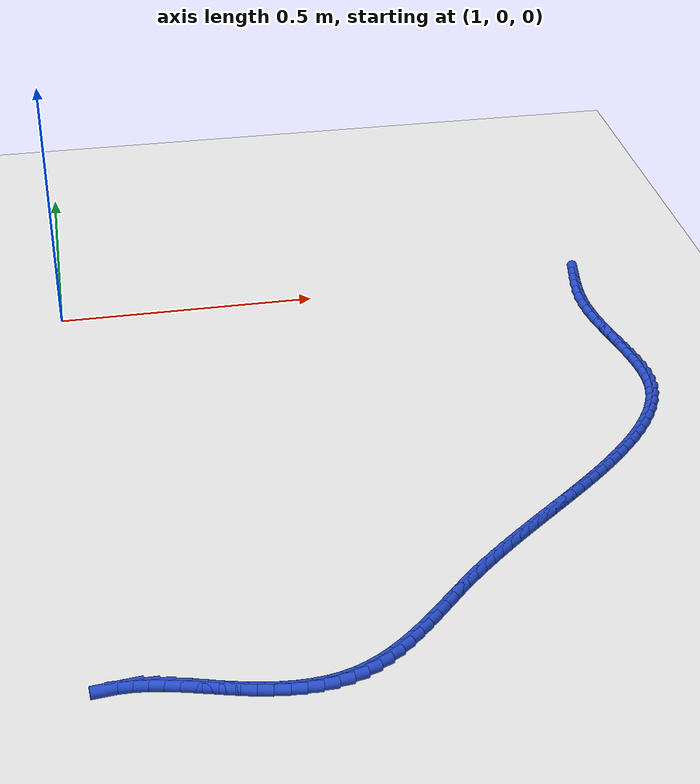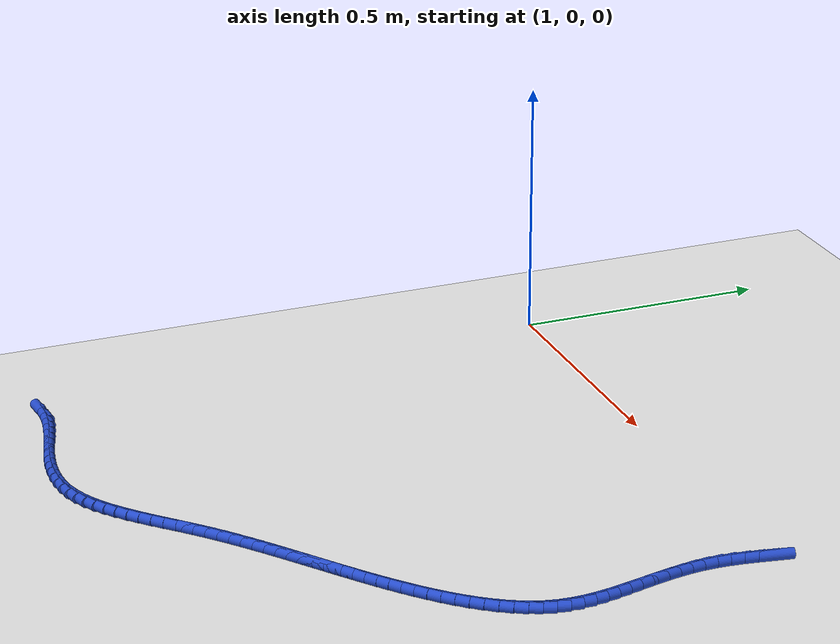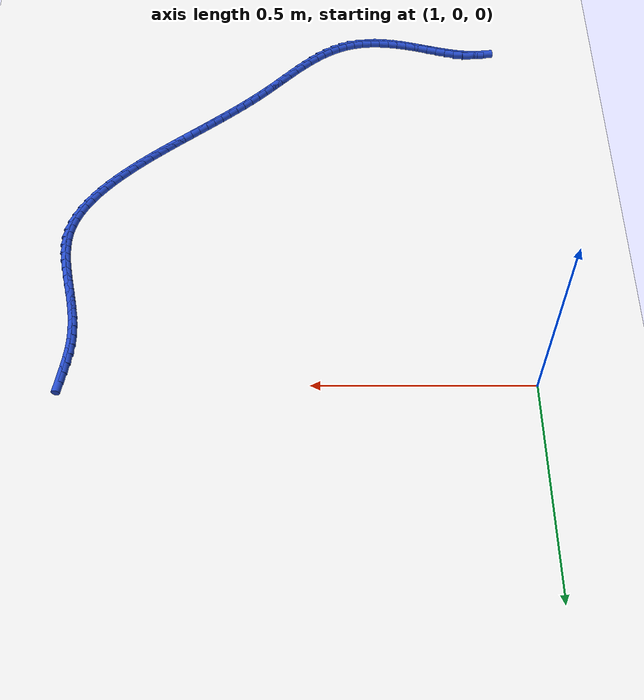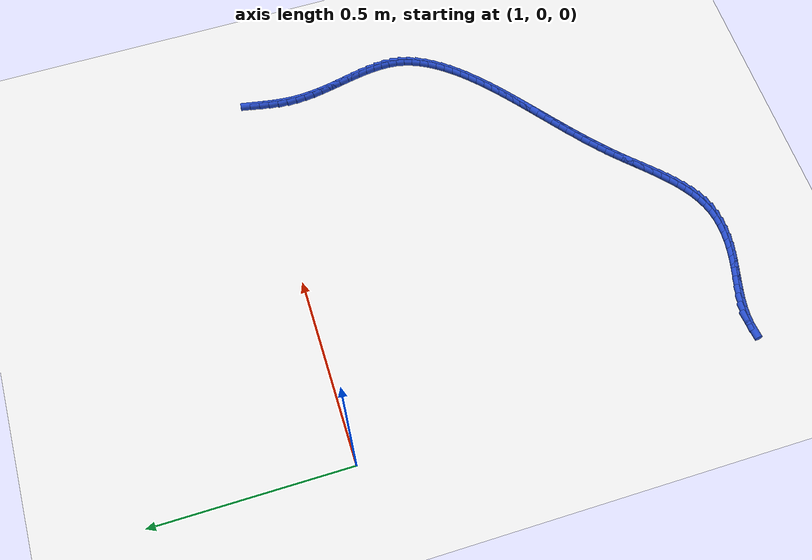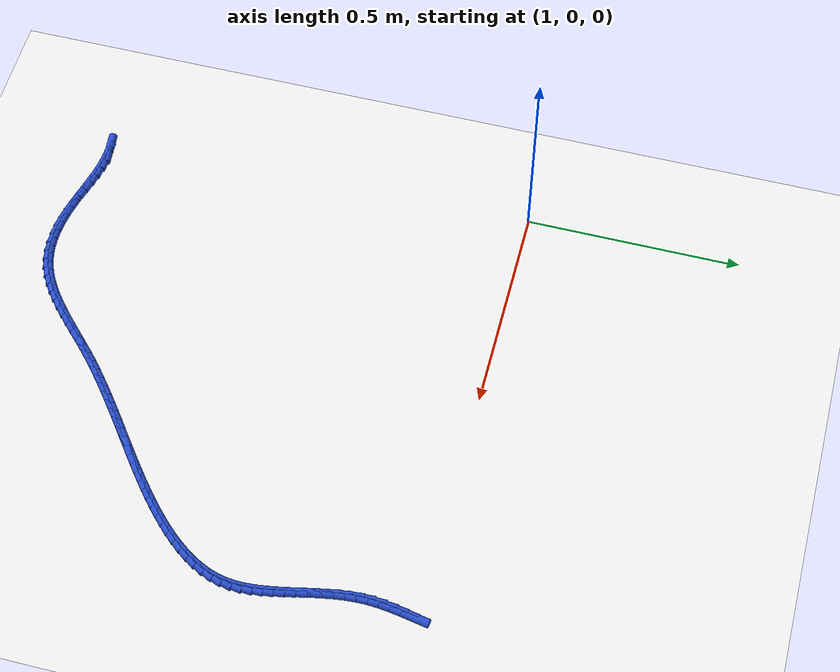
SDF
<sdf version="1.6">
 <world name="default">
  <model name="ground_plane">
   <static>1</static>
   <link name="link">
    <collision name="collision">
     <geometry><plane><normal>0 0 1</normal><size>100 100</size></plane></geometry>
     <surface><friction><ode><mu>100</mu><mu2>50</mu2></ode></friction></surface>
    </collision>
    <visual name="visual">
     <cast_shadows>0</cast_shadows>
     <geometry><plane><normal>0 0 1</normal><size>100 100</size></plane></geometry>
     <material>
      <script><uri>file://media/materials/scripts/gazebo.material</uri><name>Gazebo/WhiteGlow</name></script>
     </material>
    </visual>
   </link>
  </model>
  <model name="line">
   <link name="link_146">
    <pose>2.0486822783013046 -0.014495951095457496 0.01 0 1.57 1.3895806465222176</pose>
    <collision name="collision">
     <geometry><cylinder><radius>0.01</radius><length>0.08</length></cylinder></geometry>
    </collision>
    <visual name="visual">
     <material>
      <script><name>Gazebo/Blue</name><uri>file://media/materials/scripts/gazebo.material</uri></script>
     </material>
     <geometry><cylinder><radius>0.01</radius><length>0.08</length></cylinder></geometry>
    </visual>
   </link>
   <link name="link_147">
    <pose>2.044221834526988 -0.038839930890710674 0.01 0 1.57 1.4140635919488893</pose>
    <collision name="collision">
     <geometry><cylinder><radius>0.01</radius><length>0.08</length></cylinder></geometry>
    </collision>
    <visual name="visual">
     <material>
      <script><name>Gazebo/Blue</name><uri>file://media/materials/scripts/gazebo.material</uri></script>
     </material>
     <geometry><cylinder><radius>0.01</radius><length>0.08</length></cylinder></geometry>
    </visual>
   </link>
   <link name="link_148">
    <pose>2.040360264936487 -0.06327578136675999 0.01 0 1.57 1.4531972509927384</pose>
    <collision name="collision">
     <geometry><cylinder><radius>0.01</radius><length>0.08</length></cylinder></geometry>
    </collision>
    <visual name="visual">
     <material>
      <script><name>Gazebo/Blue</name><uri>file://media/materials/scripts/gazebo.material</uri></script>
     </material>
     <geometry><cylinder><radius>0.01</radius><length>0.08</length></cylinder></geometry>
    </visual>
   </link>
   <link name="link_149">
    <pose>2.037468843536108 -0.08774944379784438 0.01 0 1.57 1.5075055421166033</pose>
    <collision name="collision">
     <geometry><cylinder><radius>0.01</radius><length>0.08</length></cylinder></geometry>
    </collision>
    <visual name="visual">
     <material>
      <script><name>Gazebo/Blue</name><uri>file://media/materials/scripts/gazebo.material</uri></script>
     </material>
     <geometry><cylinder><radius>0.01</radius><length>0.08</length></cylinder></geometry>
    </visual>
   </link>
   <link name="link_150">
    <pose>2.035918844332154 -0.11220685945820275 0.01 0 1.57 -1.5655224282411928</pose>
    <collision name="collision">
     <geometry><cylinder><radius>0.01</radius><length>0.08</length></cylinder></geometry>
    </collision>
    <visual name="visual">
     <material>
      <script><name>Gazebo/Blue</name><uri>file://media/materials/scripts/gazebo.material</uri></script>
     </material>
     <geometry><cylinder><radius>0.01</radius><length>0.08</length></cylinder></geometry>
    </visual>
   </link>
   <link name="link_151">
    <pose>2.0360474692558097 -0.13659559765990367 0.01 0 1.57 -1.4990983044053994</pose>
    <collision name="collision">
     <geometry><cylinder><radius>0.01</radius><length>0.08</length></cylinder></geometry>
    </collision>
    <visual name="visual">
     <material>
      <script><name>Gazebo/Blue</name><uri>file://media/materials/scripts/gazebo.material</uri></script>
     </material>
     <geometry><cylinder><radius>0.01</radius><length>0.08</length></cylinder></geometry>
    </visual>
   </link>
   <link name="link_152">
    <pose>2.037791771152551 -0.16088234770834567 0.01 0 1.57 -1.445771318352139</pose>
    <collision name="collision">
     <geometry><cylinder><radius>0.01</radius><length>0.08</length></cylinder></geometry>
    </collision>
    <visual name="visual">
     <material>
      <script><name>Gazebo/Blue</name><uri>file://media/materials/scripts/gazebo.material</uri></script>
     </material>
     <geometry><cylinder><radius>0.01</radius><length>0.08</length></cylinder></geometry>
    </visual>
   </link>
   <link name="link_153">
    <pose>2.040828700569879 -0.18504622716224906 0.01 0 1.57 -1.4057005206681148</pose>
    <collision name="collision">
     <geometry><cylinder><radius>0.01</radius><length>0.08</length></cylinder></geometry>
    </collision>
    <visual name="visual">
     <material>
      <script><name>Gazebo/Blue</name><uri>file://media/materials/scripts/gazebo.material</uri></script>
     </material>
     <geometry><cylinder><radius>0.01</radius><length>0.08</length></cylinder></geometry>
    </visual>
   </link>
   <link name="link_154">
    <pose>2.0448307849451104 -0.2090665649261528 0.01 0 1.57 -1.378704857364647</pose>
    <collision name="collision">
     <geometry><cylinder><radius>0.01</radius><length>0.08</length></cylinder></geometry>
    </collision>
    <visual name="visual">
     <material>
      <script><name>Gazebo/Blue</name><uri>file://media/materials/scripts/gazebo.material</uri></script>
     </material>
     <geometry><cylinder><radius>0.01</radius><length>0.08</length></cylinder></geometry>
    </visual>
   </link>
   <link name="link_155">
    <pose>2.049470551715566 -0.23292268990459675 0.01 0 1.57 -1.364653319029093</pose>
    <collision name="collision">
     <geometry><cylinder><radius>0.01</radius><length>0.08</length></cylinder></geometry>
    </collision>
    <visual name="visual">
     <material>
      <script><name>Gazebo/Blue</name><uri>file://media/materials/scripts/gazebo.material</uri></script>
     </material>
     <geometry><cylinder><radius>0.01</radius><length>0.08</length></cylinder></geometry>
    </visual>
   </link>
   <link name="link_156">
    <pose>2.0544205283185657 -0.25659393100212075 0.01 0 1.57 -1.3636033376807182</pose>
    <collision name="collision">
     <geometry><cylinder><radius>0.01</radius><length>0.08</length></cylinder></geometry>
    </collision>
    <visual name="visual">
     <material>
      <script><name>Gazebo/Blue</name><uri>file://media/materials/scripts/gazebo.material</uri></script>
     </material>
     <geometry><cylinder><radius>0.01</radius><length>0.08</length></cylinder></geometry>
    </visual>
   </link>
   <link name="link_157">
    <pose>2.0593532421914276 -0.28005961712326466 0.01 0 1.57 -1.375880924607924</pose>
    <collision name="collision">
     <geometry><cylinder><radius>0.01</radius><length>0.08</length></cylinder></geometry>
    </collision>
    <visual name="visual">
     <material>
      <script><name>Gazebo/Blue</name><uri>file://media/materials/scripts/gazebo.material</uri></script>
     </material>
     <geometry><cylinder><radius>0.01</radius><length>0.08</length></cylinder></geometry>
    </visual>
   </link>
   <link name="link_158">
    <pose>2.0639412207714725 -0.30329907717256827 0.01 0 1.57 -1.4021088088446456</pose>
    <collision name="collision">
     <geometry><cylinder><radius>0.01</radius><length>0.08</length></cylinder></geometry>
    </collision>
    <visual name="visual">
     <material>
      <script><name>Gazebo/Blue</name><uri>file://media/materials/scripts/gazebo.material</uri></script>
     </material>
     <geometry><cylinder><radius>0.01</radius><length>0.08</length></cylinder></geometry>
    </visual>
   </link>
   <link name="link_159">
    <pose>2.067856991496019 -0.3262916400545715 0.01 0 1.57 -1.4431729335849564</pose>
    <collision name="collision">
     <geometry><cylinder><radius>0.01</radius><length>0.08</length></cylinder></geometry>
    </collision>
    <visual name="visual">
     <material>
      <script><name>Gazebo/Blue</name><uri>file://media/materials/scripts/gazebo.material</uri></script>
     </material>
     <geometry><cylinder><radius>0.01</radius><length>0.08</length></cylinder></geometry>
    </visual>
   </link>
   <link name="link_160">
    <pose>2.070773081802386 -0.34901663467381416 0.01 0 1.57 -1.5000958640659459</pose>
    <collision name="collision">
     <geometry><cylinder><radius>0.01</radius><length>0.08</length></cylinder></geometry>
    </collision>
    <visual name="visual">
     <material>
      <script><name>Gazebo/Blue</name><uri>file://media/materials/scripts/gazebo.material</uri></script>
     </material>
     <geometry><cylinder><radius>0.01</radius><length>0.08</length></cylinder></geometry>
    </visual>
   </link>
   <link name="link_161">
    <pose>2.0723620191278953 -0.3714533899348362 0.01 0 1.57 1.5678277582041924</pose>
    <collision name="collision">
     <geometry><cylinder><radius>0.01</radius><length>0.08</length></cylinder></geometry>
    </collision>
    <visual name="visual">
     <material>
      <script><name>Gazebo/Blue</name><uri>file://media/materials/scripts/gazebo.material</uri></script>
     </material>
     <geometry><cylinder><radius>0.01</radius><length>0.08</length></cylinder></geometry>
    </visual>
   </link>
   <link name="link_162">
    <pose>2.072296330909863 -0.3935812347421771 0.01 0 1.57 1.4771285907795741</pose>
    <collision name="collision">
     <geometry><cylinder><radius>0.01</radius><length>0.08</length></cylinder></geometry>
    </collision>
    <visual name="visual">
     <material>
      <script><name>Gazebo/Blue</name><uri>file://media/materials/scripts/gazebo.material</uri></script>
     </material>
     <geometry><cylinder><radius>0.01</radius><length>0.08</length></cylinder></geometry>
    </visual>
   </link>
   <link name="link_163">
    <pose>2.070248544585611 -0.4153794980003772 0.01 0 1.57 1.3705177362391554</pose>
    <collision name="collision">
     <geometry><cylinder><radius>0.01</radius><length>0.08</length></cylinder></geometry>
    </collision>
    <visual name="visual">
     <material>
      <script><name>Gazebo/Blue</name><uri>file://media/materials/scripts/gazebo.material</uri></script>
     </material>
     <geometry><cylinder><radius>0.01</radius><length>0.08</length></cylinder></geometry>
    </visual>
   </link>
   <link name="link_164">
    <pose>2.065894607151278 -0.4368274561359252 0.01 0 1.57 1.2597542038809495</pose>
    <collision name="collision">
     <geometry><cylinder><radius>0.01</radius><length>0.08</length></cylinder></geometry>
    </collision>
    <visual name="visual">
     <material>
      <script><name>Gazebo/Blue</name><uri>file://media/materials/scripts/gazebo.material</uri></script>
     </material>
     <geometry><cylinder><radius>0.01</radius><length>0.08</length></cylinder></geometry>
    </visual>
   </link>
   <link name="link_165">
    <pose>2.05911989350331 -0.457901171602814 0.01 0 1.57 1.1608378163749684</pose>
    <collision name="collision">
     <geometry><cylinder><radius>0.01</radius><length>0.08</length></cylinder></geometry>
    </collision>
    <visual name="visual">
     <material>
      <script><name>Gazebo/Blue</name><uri>file://media/materials/scripts/gazebo.material</uri></script>
     </material>
     <geometry><cylinder><radius>0.01</radius><length>0.08</length></cylinder></geometry>
    </visual>
   </link>
   <link name="link_166">
    <pose>2.0501368619699014 -0.47857168728910504 0.01 0 1.57 1.0748223361545304</pose>
    <collision name="collision">
     <geometry><cylinder><radius>0.01</radius><length>0.08</length></cylinder></geometry>
    </collision>
    <visual name="visual">
     <material>
      <script><name>Gazebo/Blue</name><uri>file://media/materials/scripts/gazebo.material</uri></script>
     </material>
     <geometry><cylinder><radius>0.01</radius><length>0.08</length></cylinder></geometry>
    </visual>
   </link>
   <link name="link_167">
    <pose>2.0391863977902087 -0.4988096098310043 0.01 0 1.57 1.000751221389307</pose>
    <collision name="collision">
     <geometry><cylinder><radius>0.01</radius><length>0.08</length></cylinder></geometry>
    </collision>
    <visual name="visual">
     <material>
      <script><name>Gazebo/Blue</name><uri>file://media/materials/scripts/gazebo.material</uri></script>
     </material>
     <geometry><cylinder><radius>0.01</radius><length>0.08</length></cylinder></geometry>
    </visual>
   </link>
   <link name="link_168">
    <pose>2.026509386203391 -0.5185855458647183 0.01 0 1.57 0.9373509788345576</pose>
    <collision name="collision">
     <geometry><cylinder><radius>0.01</radius><length>0.08</length></cylinder></geometry>
    </collision>
    <visual name="visual">
     <material>
      <script><name>Gazebo/Blue</name><uri>file://media/materials/scripts/gazebo.material</uri></script>
     </material>
     <geometry><cylinder><radius>0.01</radius><length>0.08</length></cylinder></geometry>
    </visual>
   </link>
   <link name="link_169">
    <pose>2.012346712448604 -0.5378701020264524 0.01 0 1.57 0.8833051069512788</pose>
    <collision name="collision">
     <geometry><cylinder><radius>0.01</radius><length>0.08</length></cylinder></geometry>
    </collision>
    <visual name="visual">
     <material>
      <script><name>Gazebo/Blue</name><uri>file://media/materials/scripts/gazebo.material</uri></script>
     </material>
     <geometry><cylinder><radius>0.01</radius><length>0.08</length></cylinder></geometry>
    </visual>
   </link>
   <link name="link_170">
    <pose>1.996939261765007 -0.5566338849524141 0.01 0 1.57 0.8374025268835884</pose>
    <collision name="collision">
     <geometry><cylinder><radius>0.01</radius><length>0.08</length></cylinder></geometry>
    </collision>
    <visual name="visual">
     <material>
      <script><name>Gazebo/Blue</name><uri>file://media/materials/scripts/gazebo.material</uri></script>
     </material>
     <geometry><cylinder><radius>0.01</radius><length>0.08</length></cylinder></geometry>
    </visual>
   </link>
   <link name="link_171">
    <pose>1.9805279193917558 -0.5748475012788089 0.01 0 1.57 0.7986041925820742</pose>
    <collision name="collision">
     <geometry><cylinder><radius>0.01</radius><length>0.08</length></cylinder></geometry>
    </collision>
    <visual name="visual">
     <material>
      <script><name>Gazebo/Blue</name><uri>file://media/materials/scripts/gazebo.material</uri></script>
     </material>
     <geometry><cylinder><radius>0.01</radius><length>0.08</length></cylinder></geometry>
    </visual>
   </link>
   <link name="link_172">
    <pose>1.9633535705680092 -0.5924815576418432 0.01 0 1.57 0.7660648414741407</pose>
    <collision name="collision">
     <geometry><cylinder><radius>0.01</radius><length>0.08</length></cylinder></geometry>
    </collision>
    <visual name="visual">
     <material>
      <script><name>Gazebo/Blue</name><uri>file://media/materials/scripts/gazebo.material</uri></script>
     </material>
     <geometry><cylinder><radius>0.01</radius><length>0.08</length></cylinder></geometry>
    </visual>
   </link>
   <link name="link_173">
    <pose>1.945657100532924 -0.6095066606777231 0.01 0 1.57 0.7391348332802898</pose>
    <collision name="collision">
     <geometry><cylinder><radius>0.01</radius><length>0.08</length></cylinder></geometry>
    </collision>
    <visual name="visual">
     <material>
      <script><name>Gazebo/Blue</name><uri>file://media/materials/scripts/gazebo.material</uri></script>
     </material>
     <geometry><cylinder><radius>0.01</radius><length>0.08</length></cylinder></geometry>
    </visual>
   </link>
   <link name="link_174">
    <pose>1.9276793945256592 -0.625893417022655 0.01 0 1.57 0.7171711259313877</pose>
    <collision name="collision">
     <geometry><cylinder><radius>0.01</radius><length>0.08</length></cylinder></geometry>
    </collision>
    <visual name="visual">
     <material>
      <script><name>Gazebo/Blue</name><uri>file://media/materials/scripts/gazebo.material</uri></script>
     </material>
     <geometry><cylinder><radius>0.01</radius><length>0.08</length></cylinder></geometry>
    </visual>
   </link>
   <link name="link_175">
    <pose>1.9096419458827023 -0.641623430345766 0.01 0 1.57 0.6985105147871928</pose>
    <collision name="collision">
     <geometry><cylinder><radius>0.01</radius><length>0.08</length></cylinder></geometry>
    </collision>
    <visual name="visual">
     <material>
      <script><name>Gazebo/Blue</name><uri>file://media/materials/scripts/gazebo.material</uri></script>
     </material>
     <geometry><cylinder><radius>0.01</radius><length>0.08</length></cylinder></geometry>
    </visual>
   </link>
   <link name="link_176">
    <pose>1.8916054586580262 -0.6567694869640945 0.01 0 1.57 0.6826777388687706</pose>
    <collision name="collision">
     <geometry><cylinder><radius>0.01</radius><length>0.08</length></cylinder></geometry>
    </collision>
    <visual name="visual">
     <material>
      <script><name>Gazebo/Blue</name><uri>file://media/materials/scripts/gazebo.material</uri></script>
     </material>
     <geometry><cylinder><radius>0.01</radius><length>0.08</length></cylinder></geometry>
    </visual>
   </link>
   <link name="link_177">
    <pose>1.873551117229202 -0.6714494683312524 0.01 0 1.57 0.669965395360887</pose>
    <collision name="collision">
     <geometry><cylinder><radius>0.01</radius><length>0.08</length></cylinder></geometry>
    </collision>
    <visual name="visual">
     <material>
      <script><name>Gazebo/Blue</name><uri>file://media/materials/scripts/gazebo.material</uri></script>
     </material>
     <geometry><cylinder><radius>0.01</radius><length>0.08</length></cylinder></geometry>
    </visual>
   </link>
   <link name="link_178">
    <pose>1.8554595403572183 -0.6857815766586602 0.01 0 1.57 0.6606027280437309</pose>
    <collision name="collision">
     <geometry><cylinder><radius>0.01</radius><length>0.08</length></cylinder></geometry>
    </collision>
    <visual name="visual">
     <material>
      <script><name>Gazebo/Blue</name><uri>file://media/materials/scripts/gazebo.material</uri></script>
     </material>
     <geometry><cylinder><radius>0.01</radius><length>0.08</length></cylinder></geometry>
    </visual>
   </link>
   <link name="link_179">
    <pose>1.8373113468548783 -0.6998840140632852 0.01 0 1.57 0.654497172331943</pose>
    <collision name="collision">
     <geometry><cylinder><radius>0.01</radius><length>0.08</length></cylinder></geometry>
    </collision>
    <visual name="visual">
     <material>
      <script><name>Gazebo/Blue</name><uri>file://media/materials/scripts/gazebo.material</uri></script>
     </material>
     <geometry><cylinder><radius>0.01</radius><length>0.08</length></cylinder></geometry>
    </visual>
   </link>
   <link name="link_180">
    <pose>1.8190938745186909 -0.7138627346947919 0.01 0 1.57 0.6507894623440555</pose>
    <collision name="collision">
     <geometry><cylinder><radius>0.01</radius><length>0.08</length></cylinder></geometry>
    </collision>
    <visual name="visual">
     <material>
      <script><name>Gazebo/Blue</name><uri>file://media/materials/scripts/gazebo.material</uri></script>
     </material>
     <geometry><cylinder><radius>0.01</radius><length>0.08</length></cylinder></geometry>
    </visual>
   </link>
   <link name="link_181">
    <pose>1.8008197609186791 -0.7277775740021126 0.01 0 1.57 0.6492712034984968</pose>
    <collision name="collision">
     <geometry><cylinder><radius>0.01</radius><length>0.08</length></cylinder></geometry>
    </collision>
    <visual name="visual">
     <material>
      <script><name>Gazebo/Blue</name><uri>file://media/materials/scripts/gazebo.material</uri></script>
     </material>
     <geometry><cylinder><radius>0.01</radius><length>0.08</length></cylinder></geometry>
    </visual>
   </link>
   <link name="link_182">
    <pose>1.7825075973806517 -0.7416775143930935 0.01 0 1.57 0.6499392926484685</pose>
    <collision name="collision">
     <geometry><cylinder><radius>0.01</radius><length>0.08</length></cylinder></geometry>
    </collision>
    <visual name="visual">
     <material>
      <script><name>Gazebo/Blue</name><uri>file://media/materials/scripts/gazebo.material</uri></script>
     </material>
     <geometry><cylinder><radius>0.01</radius><length>0.08</length></cylinder></geometry>
    </visual>
   </link>
   <link name="link_183">
    <pose>1.7641759752304191 -0.7556115382755823 0.01 0 1.57 0.6527821685994516</pose>
    <collision name="collision">
     <geometry><cylinder><radius>0.01</radius><length>0.08</length></cylinder></geometry>
    </collision>
    <visual name="visual">
     <material>
      <script><name>Gazebo/Blue</name><uri>file://media/materials/scripts/gazebo.material</uri></script>
     </material>
     <geometry><cylinder><radius>0.01</radius><length>0.08</length></cylinder></geometry>
    </visual>
   </link>
   <link name="link_184">
    <pose>1.7458434857937906 -0.7696286280574245 0.01 0 1.57 0.6577798590703151</pose>
    <collision name="collision">
     <geometry><cylinder><radius>0.01</radius><length>0.08</length></cylinder></geometry>
    </collision>
    <visual name="visual">
     <material>
      <script><name>Gazebo/Blue</name><uri>file://media/materials/scripts/gazebo.material</uri></script>
     </material>
     <geometry><cylinder><radius>0.01</radius><length>0.08</length></cylinder></geometry>
    </visual>
   </link>
   <link name="link_185">
    <pose>1.7275287203965755 -0.7837777661464684 0.01 0 1.57 0.6649038086064876</pose>
    <collision name="collision">
     <geometry><cylinder><radius>0.01</radius><length>0.08</length></cylinder></geometry>
    </collision>
    <visual name="visual">
     <material>
      <script><name>Gazebo/Blue</name><uri>file://media/materials/scripts/gazebo.material</uri></script>
     </material>
     <geometry><cylinder><radius>0.01</radius><length>0.08</length></cylinder></geometry>
    </visual>
   </link>
   <link name="link_186">
    <pose>1.7092502703645827 -0.7981079349505602 0.01 0 1.57 0.6741165134063508</pose>
    <collision name="collision">
     <geometry><cylinder><radius>0.01</radius><length>0.08</length></cylinder></geometry>
    </collision>
    <visual name="visual">
     <material>
      <script><name>Gazebo/Blue</name><uri>file://media/materials/scripts/gazebo.material</uri></script>
     </material>
     <geometry><cylinder><radius>0.01</radius><length>0.08</length></cylinder></geometry>
    </visual>
   </link>
   <link name="link_187">
    <pose>1.6910267270236232 -0.8126681168775467 0.01 0 1.57 0.6853710032019023</pose>
    <collision name="collision">
     <geometry><cylinder><radius>0.01</radius><length>0.08</length></cylinder></geometry>
    </collision>
    <visual name="visual">
     <material>
      <script><name>Gazebo/Blue</name><uri>file://media/materials/scripts/gazebo.material</uri></script>
     </material>
     <geometry><cylinder><radius>0.01</radius><length>0.08</length></cylinder></geometry>
    </visual>
   </link>
   <link name="link_188">
    <pose>1.6728766816995058 -0.827507294335275 0.01 0 1.57 0.6986102237754709</pose>
    <collision name="collision">
     <geometry><cylinder><radius>0.01</radius><length>0.08</length></cylinder></geometry>
    </collision>
    <visual name="visual">
     <material>
      <script><name>Gazebo/Blue</name><uri>file://media/materials/scripts/gazebo.material</uri></script>
     </material>
     <geometry><cylinder><radius>0.01</radius><length>0.08</length></cylinder></geometry>
    </visual>
   </link>
   <link name="link_189">
    <pose>1.6548187257180393 -0.8426744497315914 0.01 0 1.57 0.7137663859571125</pose>
    <collision name="collision">
     <geometry><cylinder><radius>0.01</radius><length>0.08</length></cylinder></geometry>
    </collision>
    <visual name="visual">
     <material>
      <script><name>Gazebo/Blue</name><uri>file://media/materials/scripts/gazebo.material</uri></script>
     </material>
     <geometry><cylinder><radius>0.01</radius><length>0.08</length></cylinder></geometry>
    </visual>
   </link>
   <link name="link_190">
    <pose>1.6368714504050348 -0.8582185654743433 0.01 0 1.57 0.7307603572385422</pose>
    <collision name="collision">
     <geometry><cylinder><radius>0.01</radius><length>0.08</length></cylinder></geometry>
    </collision>
    <visual name="visual">
     <material>
      <script><name>Gazebo/Blue</name><uri>file://media/materials/scripts/gazebo.material</uri></script>
     </material>
     <geometry><cylinder><radius>0.01</radius><length>0.08</length></cylinder></geometry>
    </visual>
   </link>
   <link name="link_191">
    <pose>1.619053447086301 -0.8741886239713774 0.01 0 1.57 0.7494866914946112</pose>
    <collision name="collision">
     <geometry><cylinder><radius>0.01</radius><length>0.08</length></cylinder></geometry>
    </collision>
    <visual name="visual">
     <material>
      <script><name>Gazebo/Blue</name><uri>file://media/materials/scripts/gazebo.material</uri></script>
     </material>
     <geometry><cylinder><radius>0.01</radius><length>0.08</length></cylinder></geometry>
    </visual>
   </link>
   <link name="link_192">
    <pose>1.6013831777552305 -0.8906332502645631 0.01 0 1.57 0.7666549341168323</pose>
    <collision name="collision">
     <geometry><cylinder><radius>0.01</radius><length>0.08</length></cylinder></geometry>
    </collision>
    <visual name="visual">
     <material>
      <script><name>Gazebo/Blue</name><uri>file://media/materials/scripts/gazebo.material</uri></script>
     </material>
     <geometry><cylinder><radius>0.01</radius><length>0.08</length></cylinder></geometry>
    </visual>
   </link>
   <link name="link_193">
    <pose>1.5838501449836542 -0.9075210499214761 0.01 0 1.57 0.7751999978093642</pose>
    <collision name="collision">
     <geometry><cylinder><radius>0.01</radius><length>0.08</length></cylinder></geometry>
    </collision>
    <visual name="visual">
     <material>
      <script><name>Gazebo/Blue</name><uri>file://media/materials/scripts/gazebo.material</uri></script>
     </material>
     <geometry><cylinder><radius>0.01</radius><length>0.08</length></cylinder></geometry>
    </visual>
   </link>
   <link name="link_194">
    <pose>1.5663784653915618 -0.9246399567555614 0.01 0 1.57 0.7743604899393164</pose>
    <collision name="collision">
     <geometry><cylinder><radius>0.01</radius><length>0.08</length></cylinder></geometry>
    </collision>
    <visual name="visual">
     <material>
      <script><name>Gazebo/Blue</name><uri>file://media/materials/scripts/gazebo.material</uri></script>
     </material>
     <geometry><cylinder><radius>0.01</radius><length>0.08</length></cylinder></geometry>
    </visual>
   </link>
   <link name="link_195">
    <pose>1.5488832872929892 -0.9417531237286786 0.01 0 1.57 0.7641405342598635</pose>
    <collision name="collision">
     <geometry><cylinder><radius>0.01</radius><length>0.08</length></cylinder></geometry>
    </collision>
    <visual name="visual">
     <material>
      <script><name>Gazebo/Blue</name><uri>file://media/materials/scripts/gazebo.material</uri></script>
     </material>
     <geometry><cylinder><radius>0.01</radius><length>0.08</length></cylinder></geometry>
    </visual>
   </link>
   <link name="link_196">
    <pose>1.5312797590019744 -0.9586237038026874 0.01 0 1.57 0.7443077821399496</pose>
    <collision name="collision">
     <geometry><cylinder><radius>0.01</radius><length>0.08</length></cylinder></geometry>
    </collision>
    <visual name="visual">
     <material>
      <script><name>Gazebo/Blue</name><uri>file://media/materials/scripts/gazebo.material</uri></script>
     </material>
     <geometry><cylinder><radius>0.01</radius><length>0.08</length></cylinder></geometry>
    </visual>
   </link>
   <link name="link_197">
    <pose>1.513483028832553 -0.9750148499394473 0.01 0 1.57 0.7144082190644998</pose>
    <collision name="collision">
     <geometry><cylinder><radius>0.01</radius><length>0.08</length></cylinder></geometry>
    </collision>
    <visual name="visual">
     <material>
      <script><name>Gazebo/Blue</name><uri>file://media/materials/scripts/gazebo.material</uri></script>
     </material>
     <geometry><cylinder><radius>0.01</radius><length>0.08</length></cylinder></geometry>
    </visual>
   </link>
   <link name="link_198">
    <pose>1.495408245098761 -0.9906897151008183 0.01 0 1.57 0.6738005498001801</pose>
    <collision name="collision">
     <geometry><cylinder><radius>0.01</radius><length>0.08</length></cylinder></geometry>
    </collision>
    <visual name="visual">
     <material>
      <script><name>Gazebo/Blue</name><uri>file://media/materials/scripts/gazebo.material</uri></script>
     </material>
     <geometry><cylinder><radius>0.01</radius><length>0.08</length></cylinder></geometry>
    </visual>
   </link>
   <link name="link_199">
    <pose>1.4769705561146351 -1.0054114522486597 0.01 0 1.57 0.6217260665235611</pose>
    <collision name="collision">
     <geometry><cylinder><radius>0.01</radius><length>0.08</length></cylinder></geometry>
    </collision>
    <visual name="visual">
     <material>
      <script><name>Gazebo/Blue</name><uri>file://media/materials/scripts/gazebo.material</uri></script>
     </material>
     <geometry><cylinder><radius>0.01</radius><length>0.08</length></cylinder></geometry>
    </visual>
   </link>
   <link name="link_200">
    <pose>1.4580851101942118 -1.018943214344831 0.01 0 1.57 0.5574377201569486</pose>
    <collision name="collision">
     <geometry><cylinder><radius>0.01</radius><length>0.08</length></cylinder></geometry>
    </collision>
    <visual name="visual">
     <material>
      <script><name>Gazebo/Blue</name><uri>file://media/materials/scripts/gazebo.material</uri></script>
     </material>
     <geometry><cylinder><radius>0.01</radius><length>0.08</length></cylinder></geometry>
    </visual>
   </link>
   <link name="link_201">
    <pose>1.4386670556515284 -1.0310481543511918 0.01 0 1.57 0.48041476309396225</pose>
    <collision name="collision">
     <geometry><cylinder><radius>0.01</radius><length>0.08</length></cylinder></geometry>
    </collision>
    <visual name="visual">
     <material>
      <script><name>Gazebo/Blue</name><uri>file://media/materials/scripts/gazebo.material</uri></script>
     </material>
     <geometry><cylinder><radius>0.01</radius><length>0.08</length></cylinder></geometry>
    </visual>
   </link>
   <link name="link_202">
    <pose>1.4186315408006198 -1.0414894252296025 0.01 0 1.57 0.3906750530752621</pose>
    <collision name="collision">
     <geometry><cylinder><radius>0.01</radius><length>0.08</length></cylinder></geometry>
    </collision>
    <visual name="visual">
     <material>
      <script><name>Gazebo/Blue</name><uri>file://media/materials/scripts/gazebo.material</uri></script>
     </material>
     <geometry><cylinder><radius>0.01</radius><length>0.08</length></cylinder></geometry>
    </visual>
   </link>
   <link name="link_203">
    <pose>1.3978937139555232 -1.0500301799419223 0.01 0 1.57 0.28915291547528693</pose>
    <collision name="collision">
     <geometry><cylinder><radius>0.01</radius><length>0.08</length></cylinder></geometry>
    </collision>
    <visual name="visual">
     <material>
      <script><name>Gazebo/Blue</name><uri>file://media/materials/scripts/gazebo.material</uri></script>
     </material>
     <geometry><cylinder><radius>0.01</radius><length>0.08</length></cylinder></geometry>
    </visual>
   </link>
   <link name="link_204">
    <pose>1.376368768438383 -1.0564336467876416 0.01 0 1.57 0.18277229536866615</pose>
    <collision name="collision">
     <geometry><cylinder><radius>0.01</radius><length>0.08</length></cylinder></geometry>
    </collision>
    <visual name="visual">
     <material>
      <script><name>Gazebo/Blue</name><uri>file://media/materials/scripts/gazebo.material</uri></script>
     </material>
     <geometry><cylinder><radius>0.01</radius><length>0.08</length></cylinder></geometry>
    </visual>
   </link>
   <link name="link_205">
    <pose>1.3540312508133834 -1.0605624035579138 0.01 0 1.57 0.0872428205974586</pose>
    <collision name="collision">
     <geometry><cylinder><radius>0.01</radius><length>0.08</length></cylinder></geometry>
    </collision>
    <visual name="visual">
     <material>
      <script><name>Gazebo/Blue</name><uri>file://media/materials/scripts/gazebo.material</uri></script>
     </material>
     <geometry><cylinder><radius>0.01</radius><length>0.08</length></cylinder></geometry>
    </visual>
   </link>
   <link name="link_206">
    <pose>1.3310319495785499 -1.0625740337745773 0.01 0 1.57 0.004540061700835809</pose>
    <collision name="collision">
     <geometry><cylinder><radius>0.01</radius><length>0.08</length></cylinder></geometry>
    </collision>
    <visual name="visual">
     <material>
      <script><name>Gazebo/Blue</name><uri>file://media/materials/scripts/gazebo.material</uri></script>
     </material>
     <geometry><cylinder><radius>0.01</radius><length>0.08</length></cylinder></geometry>
    </visual>
   </link>
   <link name="link_207">
    <pose>1.307554214886737 -1.0626806248710325 0.01 0 1.57 -0.06663123526423244</pose>
    <collision name="collision">
     <geometry><cylinder><radius>0.01</radius><length>0.08</length></cylinder></geometry>
    </collision>
    <visual name="visual">
     <material>
      <script><name>Gazebo/Blue</name><uri>file://media/materials/scripts/gazebo.material</uri></script>
     </material>
     <geometry><cylinder><radius>0.01</radius><length>0.08</length></cylinder></geometry>
    </visual>
   </link>
   <link name="link_208">
    <pose>1.283781396890799 -1.0610942642806784 0.01 0 1.57 -0.1277197463241051</pose>
    <collision name="collision">
     <geometry><cylinder><radius>0.01</radius><length>0.08</length></cylinder></geometry>
    </collision>
    <visual name="visual">
     <material>
      <script><name>Gazebo/Blue</name><uri>file://media/materials/scripts/gazebo.material</uri></script>
     </material>
     <geometry><cylinder><radius>0.01</radius><length>0.08</length></cylinder></geometry>
    </visual>
   </link>
   <link name="link_209">
    <pose>1.2598968457435908 -1.0580270394369156 0.01 0 1.57 -0.17997011849079597</pose>
    <collision name="collision">
     <geometry><cylinder><radius>0.01</radius><length>0.08</length></cylinder></geometry>
    </collision>
    <visual name="visual">
     <material>
      <script><name>Gazebo/Blue</name><uri>file://media/materials/scripts/gazebo.material</uri></script>
     </material>
     <geometry><cylinder><radius>0.01</radius><length>0.08</length></cylinder></geometry>
    </visual>
   </link>
   <link name="link_210">
    <pose>1.2360811462831869 -1.0536940430321584 0.01 0 1.57 -0.22000933771958614</pose>
    <collision name="collision">
     <geometry><cylinder><radius>0.01</radius><length>0.08</length></cylinder></geometry>
    </collision>
    <visual name="visual">
     <material>
      <script><name>Gazebo/Blue</name><uri>file://media/materials/scripts/gazebo.material</uri></script>
     </material>
     <geometry><cylinder><radius>0.01</radius><length>0.08</length></cylinder></geometry>
    </visual>
   </link>
   <link name="link_211">
    <pose>1.2124282149544463 -1.048404556301811 0.01 0 1.57 -0.24303569031136615</pose>
    <collision name="collision">
     <geometry><cylinder><radius>0.01</radius><length>0.08</length></cylinder></geometry>
    </collision>
    <visual name="visual">
     <material>
      <script><name>Gazebo/Blue</name><uri>file://media/materials/scripts/gazebo.material</uri></script>
     </material>
     <geometry><cylinder><radius>0.01</radius><length>0.08</length></cylinder></geometry>
    </visual>
   </link>
   <link name="link_212">
    <pose>1.1889301404026604 -1.0425785238006422 0.01 0 1.57 -0.2488862465003907</pose>
    <collision name="collision">
     <geometry><cylinder><radius>0.01</radius><length>0.08</length></cylinder></geometry>
    </collision>
    <visual name="visual">
     <material>
      <script><name>Gazebo/Blue</name><uri>file://media/materials/scripts/gazebo.material</uri></script>
     </material>
     <geometry><cylinder><radius>0.01</radius><length>0.08</length></cylinder></geometry>
    </visual>
   </link>
   <link name="link_213">
    <pose>1.1655731893602788 -1.0366422171591587 0.01 0 1.57 -0.2373845814996676</pose>
    <collision name="collision">
     <geometry><cylinder><radius>0.01</radius><length>0.08</length></cylinder></geometry>
    </collision>
    <visual name="visual">
     <material>
      <script><name>Gazebo/Blue</name><uri>file://media/materials/scripts/gazebo.material</uri></script>
     </material>
     <geometry><cylinder><radius>0.01</radius><length>0.08</length></cylinder></geometry>
    </visual>
   </link>
   <link name="link_214">
    <pose>1.1423436285597506 -1.031021908007866 0.01 0 1.57 -0.20797396441733176</pose>
    <collision name="collision">
     <geometry><cylinder><radius>0.01</radius><length>0.08</length></cylinder></geometry>
    </collision>
    <visual name="visual">
     <material>
      <script><name>Gazebo/Blue</name><uri>file://media/materials/scripts/gazebo.material</uri></script>
     </material>
     <geometry><cylinder><radius>0.01</radius><length>0.08</length></cylinder></geometry>
    </visual>
   </link>
   <link name="link_215">
    <pose>1.1192277247335252 -1.0261438679772708 0.01 0 1.57 -0.15979643199412727</pose>
    <collision name="collision">
     <geometry><cylinder><radius>0.01</radius><length>0.08</length></cylinder></geometry>
    </collision>
    <visual name="visual">
     <material>
      <script><name>Gazebo/Blue</name><uri>file://media/materials/scripts/gazebo.material</uri></script>
     </material>
     <geometry><cylinder><radius>0.01</radius><length>0.08</length></cylinder></geometry>
    </visual>
   </link>
   <link name="link_216">
    <pose>1.0962117446140538 -1.0224343686978796 0.01 0 1.57 -0.09196429433373973</pose>
    <collision name="collision">
     <geometry><cylinder><radius>0.01</radius><length>0.08</length></cylinder></geometry>
    </collision>
    <visual name="visual">
     <material>
      <script><name>Gazebo/Blue</name><uri>file://media/materials/scripts/gazebo.material</uri></script>
     </material>
     <geometry><cylinder><radius>0.01</radius><length>0.08</length></cylinder></geometry>
    </visual>
   </link>
   <link name="link_217">
    <pose>1.0732819549337838 -1.0203196818001983 0.01 0 1.57 -0.0040950693700550584</pose>
    <collision name="collision">
     <geometry><cylinder><radius>0.01</radius><length>0.08</length></cylinder></geometry>
    </collision>
    <visual name="visual">
     <material>
      <script><name>Gazebo/Blue</name><uri>file://media/materials/scripts/gazebo.material</uri></script>
     </material>
     <geometry><cylinder><radius>0.01</radius><length>0.08</length></cylinder></geometry>
    </visual>
   </link>
   <link name="link_218">
    <pose>1.0504246224251654 -1.020226078914733 0.01 0 1.57 0.10287659271196499</pose>
    <collision name="collision">
     <geometry><cylinder><radius>0.01</radius><length>0.08</length></cylinder></geometry>
    </collision>
    <visual name="visual">
     <material>
      <script><name>Gazebo/Blue</name><uri>file://media/materials/scripts/gazebo.material</uri></script>
     </material>
     <geometry><cylinder><radius>0.01</radius><length>0.08</length></cylinder></geometry>
    </visual>
   </link>
  </model>
 </world>
</sdf>
